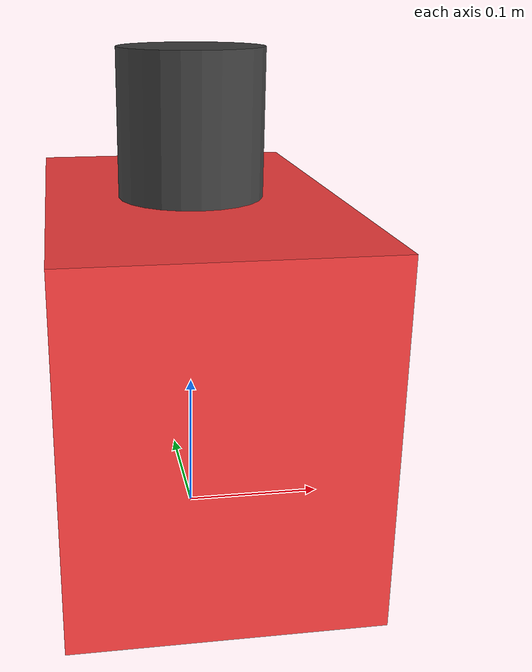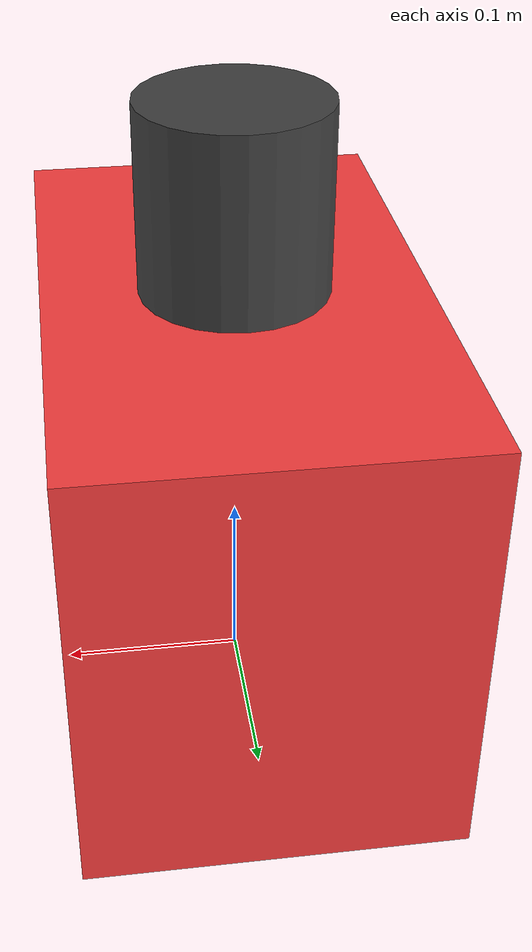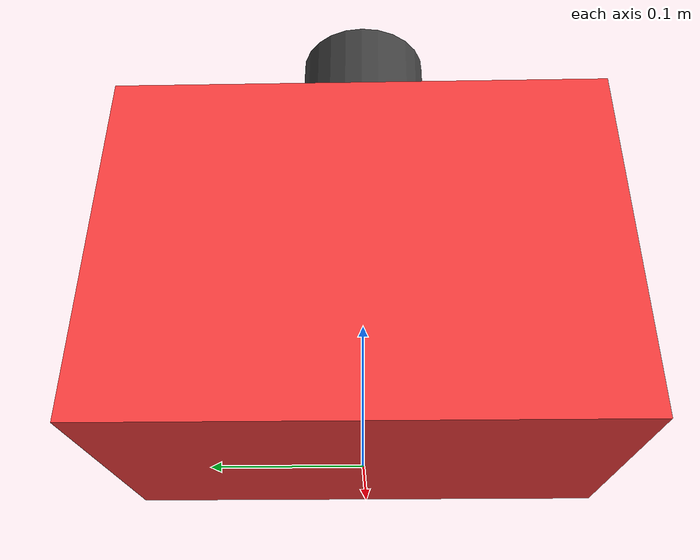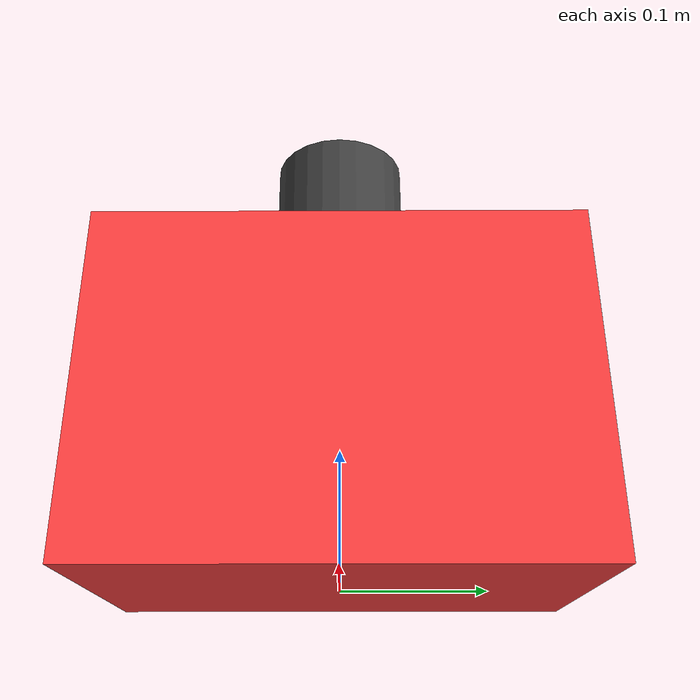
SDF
<?xml version="1.0" ?>
<sdf version="1.6">
  <model name="radio_box">
    <pose>0 0 0 0 0 0</pose>

    <!-- Radio box, high mass and small inertia so it doesn't fall over easily -->
    <link name="cuboid_link">
      <pose>0 0 0.12 0 0 0</pose> <!-- Position the cuboid on the ground -->
      <visual name="visual">
        <geometry>
          <box>
            <size>0.2 0.34 0.24</size>
          </box>
        </geometry>
        <material>
          <ambient>1.0 0.25 0.25 1</ambient>
          <diffuse>1.0 0.25 0.25 1</diffuse>
        </material>
      </visual>
      <collision name="collision">
        <geometry>
          <box>
            <size>0.2 0.34 0.24</size>
          </box>
        </geometry>
      </collision>
      <inertial>
        <mass>50</mass>
        <inertia>
          <ixx>0.00083</ixx>
          <ixy>0</ixy>
          <ixz>0</ixz>
          <iyy>0.00083</iyy>
          <iyz>0</iyz>
          <izz>0.00083</izz>
        </inertia>
      </inertial>
    </link>

    <!-- Rod link, small mass on purpose -->
    <link name="rod_link">
      <pose>0 0 0.29 0 0 0</pose> <!-- Position the rod on top of the cuboid -->
      <visual name="rod_visual">
        <geometry>
          <cylinder>
            <radius>0.05</radius>
            <length>0.1</length>
          </cylinder>
        </geometry>
        <material>
          <ambient>0.25 0.25 0.25 1</ambient>
          <diffuse>0.25 0.25 0.25 1</diffuse>
        </material>
      </visual>
      <collision name="rod_collision">
        <geometry>
          <cylinder>
            <radius>0.05</radius>
            <length>0.1</length>
          </cylinder>
        </geometry>
      </collision>
      <inertial>
        <mass>0.01</mass>
        <inertia>
          <ixx>0.00083</ixx>
          <ixy>0</ixy>
          <ixz>0</ixz>
          <iyy>0.00083</iyy>
          <iyz>0</iyz>
          <izz>0.00083</izz>
        </inertia>
      </inertial>
    </link>

    <!-- Joint to connect the cuboid and the rod -->
    <joint name="cuboid_rod_joint" type="fixed">
      <parent>cuboid_link</parent>
      <child>rod_link</child>
    </joint>

    <!-- odometry plugin which publishes the position of the radio box -->
    <plugin
      filename="gz-sim-odometry-publisher-system"
      name="gz::sim::systems::OdometryPublisher">
      <dimensions>3</dimensions>
      <odom_publish_frequency>10.0</odom_publish_frequency>
      <odom_topic>radio_box/odom_ground_truth</odom_topic>
      <odom_frame>map</odom_frame>
      <robot_base_frame>base_link</robot_base_frame>
    </plugin>
  </model>
</sdf>
